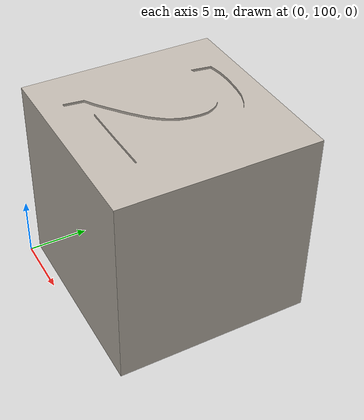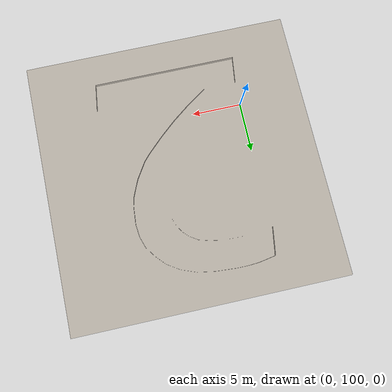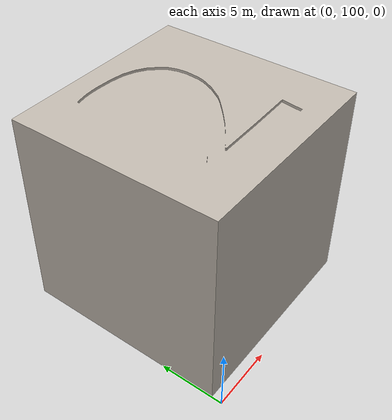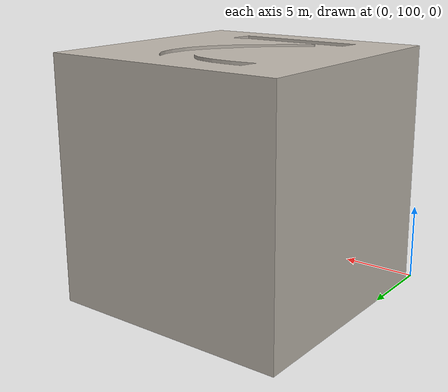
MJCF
<mujoco model="cube2">
  <asset>
    <mesh file="meshes/cube2.stl" name="cube2_mesh" scale="0.8 0.8 0.8"/>
    <texture type="2d" file="../textures/number2.png" rgb1="1 1 1" name="tex-number2"/>
    <material name="cube2" reflectance="0.5" texrepeat="1 1" texture="tex-number2" texuniform="false"/>
  </asset>
  <worldbody>
    <body>
      <body name="object">
        <geom pos="0 0 0" mesh="cube2_mesh" type="mesh" solimp="0.998 0.998 0.001" solref="0.001 1" density="150" friction="0.95 0.3 0.1" material="cube2" group="0" condim="4"/>
      </body>
      <site rgba="0 0 0 0" size="0.005" pos="0 0 -0.10" name="bottom_site"/>
      <site rgba="0 0 0 0" size="0.005" pos="0 0 0.03" name="top_site"/>
      <site rgba="0 0 0 0" size="0.005" pos="0.04 0.03 0" name="horizontal_radius_site"/>
    </body>
  </worldbody>
</mujoco>
